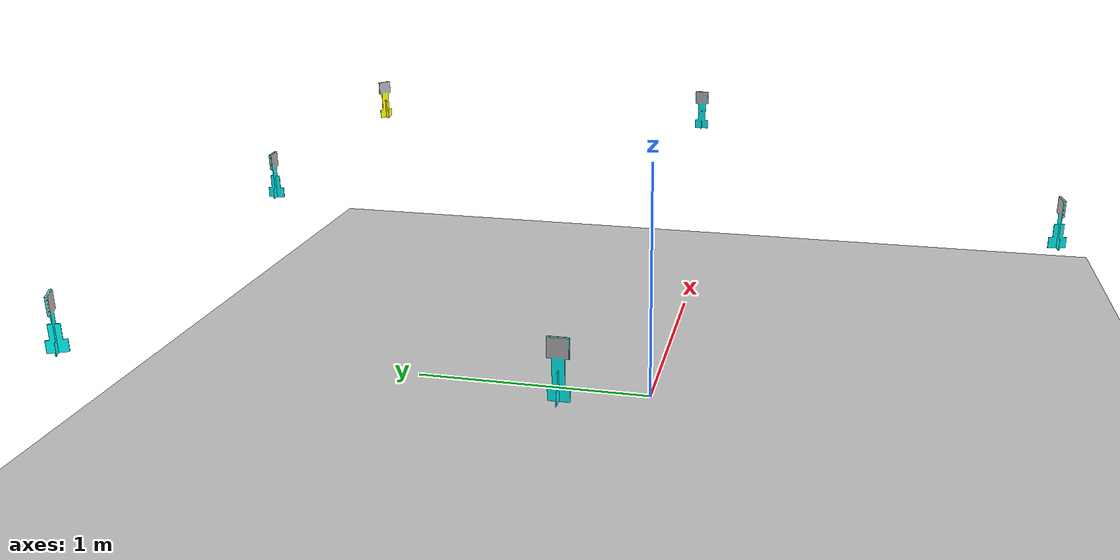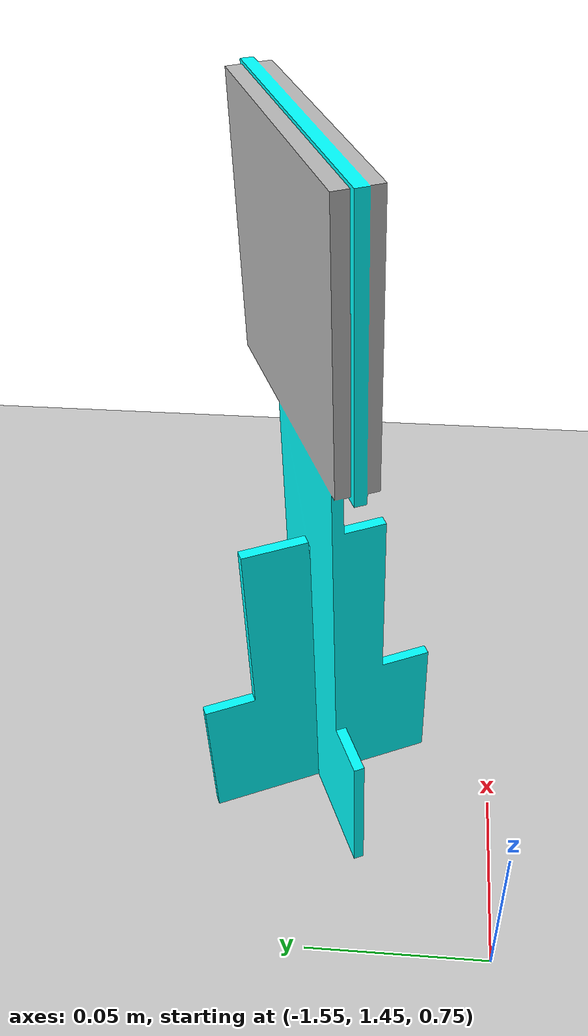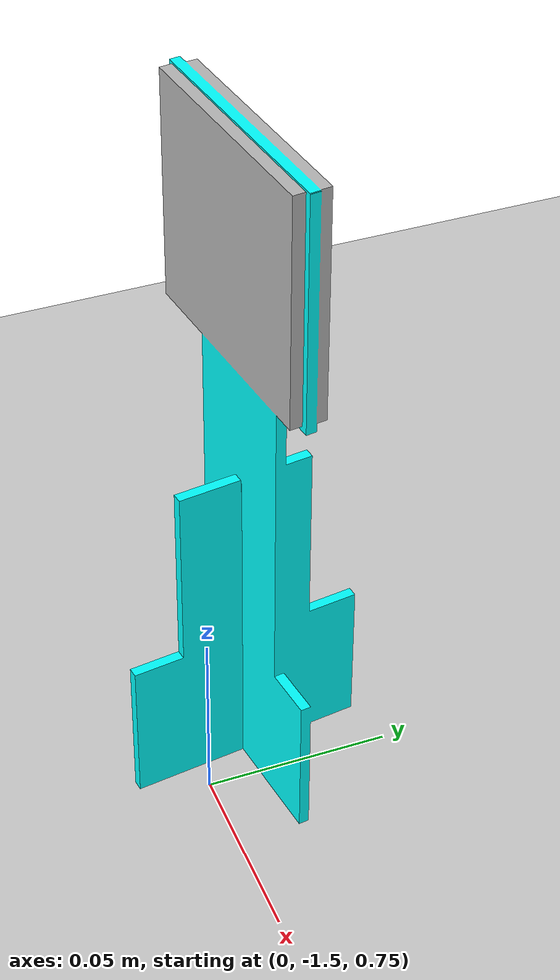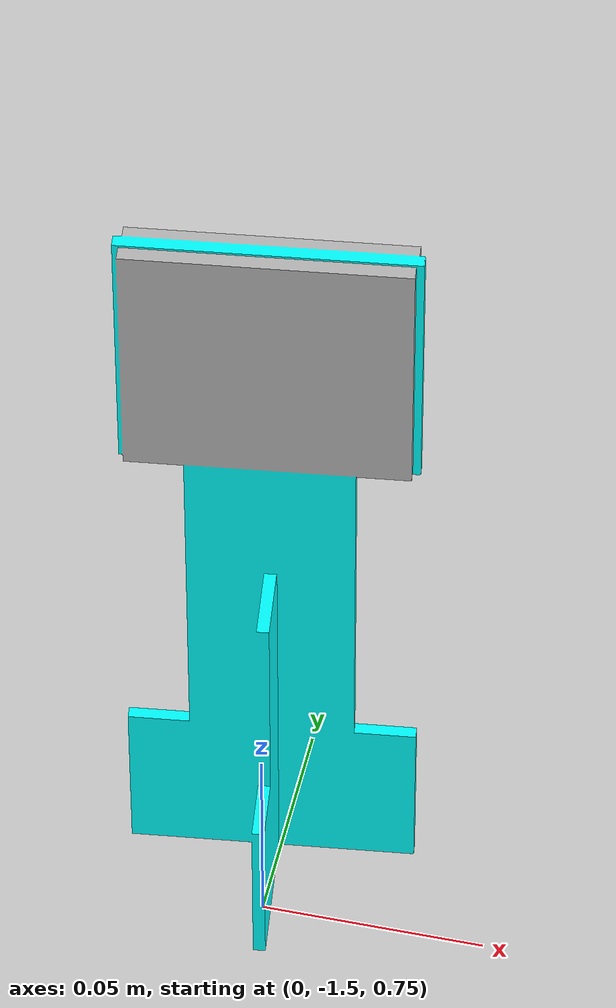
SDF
<sdf version="1.4">
  <world name="default">
    <scene>
      <ambient>0.8 0.8 0.8 1</ambient>
      <background>0.7 0.7 0.7 1</background>
      <shadows>true</shadows>
    </scene>

    <!-- A global light source -->
    <include>
      <uri>model://sun</uri>
      <pose> -2.0 2.0 2.0 0 0 0</pose>
    </include>

    <!-- A ground plane -->
    <include>
      <uri>model://ground_plane</uri>
    </include>

 <!-- creeper_10_azul -->
    <include>
      <uri>model://reuniao/creepers/creeper_10_azul</uri>
      <pose> -1.5 1.5 0.75 0 0 2.0</pose>
    </include>

 <!-- creeper_10_verde -->
    <include>
      <uri>model://reuniao/creepers/creeper_10_verde</uri>
      <pose> 0 1.58 0.75 0 0 1.65</pose>
    </include>

 <!-- creeper_10_amarelo -->
    <include>
      <uri>model://reuniao/creepers/creeper_10_amarelo</uri>
      <pose> -1.5 0 0.75 0 0 0</pose>
    </include>

 <!-- creeper_20_azul -->
    <include>
      <uri>model://reuniao/creepers/creeper_20_azul</uri>
      <pose> 1.5 -0 0.75 0 0 0</pose>
    </include>

 <!-- creeper_20_verde -->
    <include>
      <uri>model://reuniao/creepers/creeper_20_verde</uri>
      <pose>  0 -1.49 0.75 0 0 1.7</pose>
    </include>

 <!-- creeper_20_amarelo -->
    <include>
      <uri>model://reuniao/creepers/creeper_20_amarelo</uri>
      <pose> 1.4 1.67  0.75 0 0 0.9</pose>
    </include>

    <physics type="ode">
      <real_time_update_rate>1000.0</real_time_update_rate>
      <max_step_size>0.001</max_step_size>
      <real_time_factor>1</real_time_factor>
      <ode>
        <solver>
          <type>quick</type>
          <iters>150</iters>
          <precon_iters>0</precon_iters>
          <sor>1.400000</sor>
          <use_dynamic_moi_rescaling>1</use_dynamic_moi_rescaling>
        </solver>
        <constraints>
          <cfm>0.00001</cfm>
          <erp>0.2</erp>
          <contact_max_correcting_vel>2000.000000</contact_max_correcting_vel>
          <contact_surface_layer>0.01000</contact_surface_layer>
        </constraints>
      </ode>
    </physics>

    <gui fullscreen='0'>
      <camera name='user_camera'>
        <pose frame=''>0.238775 -6.8831 10.8485 -0 0.979642 1.5602</pose>
        <view_controller>orbit</view_controller>
        <projection_type>perspective</projection_type>
      </camera>
    </gui>

  </world>

</sdf>

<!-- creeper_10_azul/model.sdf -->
<sdf version='1.6'>
  <model name='creeper_10_azul'>
    <link name='link'>
      <pose frame=''>0 -0 0.115 0 -0 0</pose>
      <inertial>
        <mass>0.00004</mass>
        <inertia>
          <ixx>2.01e-06</ixx>
          <ixy>0</ixy>
          <ixz>0</ixz>
          <iyy>2.01e-06</iyy>
          <iyz>0</iyz>
          <izz>5.9e-07</izz>
        </inertia>
        <pose frame=''>0 0 0 0 -0 0</pose>
      </inertial>
      <self_collide>0</self_collide>
      <enable_wind>0</enable_wind>
      <kinematic>0</kinematic>
      <gravity>1</gravity>
      <visual name='visual'>
        <pose frame=''>0 0 -0.15 0 0 0</pose>
        <geometry>
          <mesh>
            <uri>model://reuniao/creepers/creeper_10_azul/materials/textures/creeper.dae</uri>
            <scale>1 1 1</scale>
          </mesh>
        </geometry>
        <transparency>0</transparency>
        <cast_shadows>1</cast_shadows>
      </visual>
      <collision name='collision'>
        <laser_retro>0</laser_retro>
        <max_contacts>10</max_contacts>
        <pose frame=''>0 0 0 0 -0 0</pose>
        <geometry>
          <box>
            <size>0.015 0.035 0.2</size>
          </box>
        </geometry>
        <surface>
          <friction>
            <ode>
              <mu>10</mu>
              <mu2>10</mu2>
              <fdir1>0 0 0</fdir1>
              <slip1>0</slip1>
              <slip2>0</slip2>
            </ode>
            <torsional>
              <coefficient>1</coefficient>
              <patch_radius>0</patch_radius>
              <surface_radius>0</surface_radius>
              <use_patch_radius>1</use_patch_radius>
              <ode>
                <slip>0</slip>
              </ode>
            </torsional>
          </friction>
          <bounce>
            <restitution_coefficient>0</restitution_coefficient>
            <threshold>1e+06</threshold>
          </bounce>
          <contact>
            <collide_without_contact>0</collide_without_contact>
            <collide_without_contact_bitmask>1</collide_without_contact_bitmask>
            <collide_bitmask>1</collide_bitmask>
            <ode>
              <soft_cfm>0</soft_cfm>
              <soft_erp>0.2</soft_erp>
              <kp>1e+13</kp>
              <kd>1</kd>
              <max_vel>0.01</max_vel>
              <min_depth>0</min_depth>
            </ode>
            <bullet>
              <split_impulse>1</split_impulse>
              <split_impulse_penetration_threshold>-0.01</split_impulse_penetration_threshold>
              <soft_cfm>0</soft_cfm>
              <soft_erp>0.2</soft_erp>
              <kp>1e+13</kp>
              <kd>1</kd>
            </bullet>
          </contact>
        </surface>
      </collision>
    </link>
    <static>0</static>
    <allow_auto_disable>1</allow_auto_disable>
  </model>
</sdf>

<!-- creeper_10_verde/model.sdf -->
<sdf version='1.6'>
  <model name='creeper_10_verde'>
    <link name='link'>
      <pose frame=''>0 -0 0.115 0 -0 0</pose>
      <inertial>
        <mass>0.00004</mass>
        <inertia>
          <ixx>2.01e-06</ixx>
          <ixy>0</ixy>
          <ixz>0</ixz>
          <iyy>2.01e-06</iyy>
          <iyz>0</iyz>
          <izz>5.9e-07</izz>
        </inertia>
        <pose frame=''>0 0 0 0 -0 0</pose>
      </inertial>
      <self_collide>0</self_collide>
      <enable_wind>0</enable_wind>
      <kinematic>0</kinematic>
      <gravity>1</gravity>
      <visual name='visual'>
        <pose frame=''>0 0 -0.15 0 -0 0</pose>
        <geometry>
          <mesh>
            <uri>model://reuniao/creepers/creeper_10_verde/materials/textures/creeper.dae</uri>
            <scale>1 1 1</scale>
          </mesh>
        </geometry>
        <transparency>0</transparency>
        <cast_shadows>1</cast_shadows>
      </visual>
      <collision name='collision'>
        <laser_retro>0</laser_retro>
        <max_contacts>10</max_contacts>
        <pose frame=''>0 0 0 0 -0 0</pose>
        <geometry>
          <box>
            <size>0.015 0.035 0.2</size>
          </box>
        </geometry>
        <surface>
          <friction>
            <ode>
              <mu>10</mu>
              <mu2>10</mu2>
              <fdir1>0 0 0</fdir1>
              <slip1>0</slip1>
              <slip2>0</slip2>
            </ode>
            <torsional>
              <coefficient>1</coefficient>
              <patch_radius>0</patch_radius>
              <surface_radius>0</surface_radius>
              <use_patch_radius>1</use_patch_radius>
              <ode>
                <slip>0</slip>
              </ode>
            </torsional>
          </friction>
          <bounce>
            <restitution_coefficient>0</restitution_coefficient>
            <threshold>1e+06</threshold>
          </bounce>
          <contact>
            <collide_without_contact>0</collide_without_contact>
            <collide_without_contact_bitmask>1</collide_without_contact_bitmask>
            <collide_bitmask>1</collide_bitmask>
            <ode>
              <soft_cfm>0</soft_cfm>
              <soft_erp>0.2</soft_erp>
              <kp>1e+13</kp>
              <kd>1</kd>
              <max_vel>0.01</max_vel>
              <min_depth>0</min_depth>
            </ode>
            <bullet>
              <split_impulse>1</split_impulse>
              <split_impulse_penetration_threshold>-0.01</split_impulse_penetration_threshold>
              <soft_cfm>0</soft_cfm>
              <soft_erp>0.2</soft_erp>
              <kp>1e+13</kp>
              <kd>1</kd>
            </bullet>
          </contact>
        </surface>
      </collision>
    </link>
    <static>0</static>
    <allow_auto_disable>1</allow_auto_disable>
  </model>
</sdf>

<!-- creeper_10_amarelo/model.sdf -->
<sdf version='1.6'>
  <model name='creeper_10_amarelo'>
    <link name='link'>
      <pose frame=''>0 -0 0.115 0 -0 0</pose>
      <inertial>
        <mass>0.00004</mass>
        <inertia>
          <ixx>2.01e-06</ixx>
          <ixy>0</ixy>
          <ixz>0</ixz>
          <iyy>2.01e-06</iyy>
          <iyz>0</iyz>
          <izz>5.9e-07</izz>
        </inertia>
        <pose frame=''>0 0 0 0 -0 0</pose>
      </inertial>
      <self_collide>0</self_collide>
      <enable_wind>0</enable_wind>
      <kinematic>0</kinematic>
      <gravity>1</gravity>
      <visual name='visual'>
        <pose frame=''>0 0 -0.15 0 -0 0</pose>
        <geometry>
          <mesh>
            <uri>model://reuniao/creepers/creeper_10_amarelo/materials/textures/creeper.dae</uri>
            <scale>1 1 1</scale>
          </mesh>
        </geometry>
        <transparency>0</transparency>
        <cast_shadows>1</cast_shadows>
      </visual>
      <collision name='collision'>
        <laser_retro>0</laser_retro>
        <max_contacts>10</max_contacts>
        <pose frame=''>0 0 0 0 -0 0</pose>
        <geometry>
          <box>
            <size>0.015 0.035 0.2</size>
          </box>
        </geometry>
        <surface>
          <friction>
            <ode>
              <mu>10</mu>
              <mu2>10</mu2>
              <fdir1>0 0 0</fdir1>
              <slip1>0</slip1>
              <slip2>0</slip2>
            </ode>
            <torsional>
              <coefficient>1</coefficient>
              <patch_radius>0</patch_radius>
              <surface_radius>0</surface_radius>
              <use_patch_radius>1</use_patch_radius>
              <ode>
                <slip>0</slip>
              </ode>
            </torsional>
          </friction>
          <bounce>
            <restitution_coefficient>0</restitution_coefficient>
            <threshold>1e+06</threshold>
          </bounce>
          <contact>
            <collide_without_contact>0</collide_without_contact>
            <collide_without_contact_bitmask>1</collide_without_contact_bitmask>
            <collide_bitmask>1</collide_bitmask>
            <ode>
              <soft_cfm>0</soft_cfm>
              <soft_erp>0.2</soft_erp>
              <kp>1e+13</kp>
              <kd>1</kd>
              <max_vel>0.01</max_vel>
              <min_depth>0</min_depth>
            </ode>
            <bullet>
              <split_impulse>1</split_impulse>
              <split_impulse_penetration_threshold>-0.01</split_impulse_penetration_threshold>
              <soft_cfm>0</soft_cfm>
              <soft_erp>0.2</soft_erp>
              <kp>1e+13</kp>
              <kd>1</kd>
            </bullet>
          </contact>
        </surface>
      </collision>
    </link>
    <static>0</static>
    <allow_auto_disable>1</allow_auto_disable>
  </model>
</sdf>

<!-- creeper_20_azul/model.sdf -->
<sdf version='1.6'>
  <model name='creeper_20_azul'>
    <link name='link'>
      <pose frame=''>0 -0 0.115 0 -0 0</pose>
      <inertial>
        <mass>0.00004</mass>
        <inertia>
          <ixx>2.01e-06</ixx>
          <ixy>0</ixy>
          <ixz>0</ixz>
          <iyy>2.01e-06</iyy>
          <iyz>0</iyz>
          <izz>5.9e-07</izz>
        </inertia>
        <pose frame=''>0 0 0 0 -0 0</pose>
      </inertial>
      <self_collide>0</self_collide>
      <enable_wind>0</enable_wind>
      <kinematic>0</kinematic>
      <gravity>1</gravity>
      <visual name='visual'>
        <pose frame=''>0 0 -0.15 0 0 0</pose>
        <geometry>
          <mesh>
            <uri>model://reuniao/creepers/creeper_20_azul/materials/textures/creeper.dae</uri>
            <scale>1 1 1</scale>
          </mesh>
        </geometry>
        <transparency>0</transparency>
        <cast_shadows>1</cast_shadows>
      </visual>
      <collision name='collision'>
        <laser_retro>0</laser_retro>
        <max_contacts>10</max_contacts>
        <pose frame=''>0 0 0 0 -0 0</pose>
        <geometry>
          <box>
            <size>0.015 0.035 0.2</size>
          </box>
        </geometry>
        <surface>
          <friction>
            <ode>
              <mu>10</mu>
              <mu2>10</mu2>
              <fdir1>0 0 0</fdir1>
              <slip1>0</slip1>
              <slip2>0</slip2>
            </ode>
            <torsional>
              <coefficient>1</coefficient>
              <patch_radius>0</patch_radius>
              <surface_radius>0</surface_radius>
              <use_patch_radius>1</use_patch_radius>
              <ode>
                <slip>0</slip>
              </ode>
            </torsional>
          </friction>
          <bounce>
            <restitution_coefficient>0</restitution_coefficient>
            <threshold>1e+06</threshold>
          </bounce>
          <contact>
            <collide_without_contact>0</collide_without_contact>
            <collide_without_contact_bitmask>1</collide_without_contact_bitmask>
            <collide_bitmask>1</collide_bitmask>
            <ode>
              <soft_cfm>0</soft_cfm>
              <soft_erp>0.2</soft_erp>
              <kp>1e+13</kp>
              <kd>1</kd>
              <max_vel>0.01</max_vel>
              <min_depth>0</min_depth>
            </ode>
            <bullet>
              <split_impulse>1</split_impulse>
              <split_impulse_penetration_threshold>-0.01</split_impulse_penetration_threshold>
              <soft_cfm>0</soft_cfm>
              <soft_erp>0.2</soft_erp>
              <kp>1e+13</kp>
              <kd>1</kd>
            </bullet>
          </contact>
        </surface>
      </collision>
    </link>
    <static>0</static>
    <allow_auto_disable>1</allow_auto_disable>
  </model>
</sdf>

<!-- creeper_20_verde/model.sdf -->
<sdf version='1.6'>
  <model name='creeper_20_verde'>
    <link name='link'>
      <pose frame=''>0 -0 0.115 0 -0 0</pose>
      <inertial>
        <mass>0.00004</mass>
        <inertia>
          <ixx>2.01e-06</ixx>
          <ixy>0</ixy>
          <ixz>0</ixz>
          <iyy>2.01e-06</iyy>
          <iyz>0</iyz>
          <izz>5.9e-07</izz>
        </inertia>
        <pose frame=''>0 0 0 0 -0 0</pose>
      </inertial>
      <self_collide>0</self_collide>
      <enable_wind>0</enable_wind>
      <kinematic>0</kinematic>
      <gravity>1</gravity>
      <visual name='visual'>
        <pose frame=''>0 0 -0.15 0 -0 0</pose>
        <geometry>
          <mesh>
            <uri>model://reuniao/creepers/creeper_20_verde/materials/textures/creeper.dae</uri>
            <scale>1 1 1</scale>
          </mesh>
        </geometry>
        <transparency>0</transparency>
        <cast_shadows>1</cast_shadows>
      </visual>
      <collision name='collision'>
        <laser_retro>0</laser_retro>
        <max_contacts>10</max_contacts>
        <pose frame=''>0 0 0 0 -0 0</pose>
        <geometry>
          <box>
            <size>0.015 0.035 0.2</size>
          </box>
        </geometry>
        <surface>
          <friction>
            <ode>
              <mu>10</mu>
              <mu2>10</mu2>
              <fdir1>0 0 0</fdir1>
              <slip1>0</slip1>
              <slip2>0</slip2>
            </ode>
            <torsional>
              <coefficient>1</coefficient>
              <patch_radius>0</patch_radius>
              <surface_radius>0</surface_radius>
              <use_patch_radius>1</use_patch_radius>
              <ode>
                <slip>0</slip>
              </ode>
            </torsional>
          </friction>
          <bounce>
            <restitution_coefficient>0</restitution_coefficient>
            <threshold>1e+06</threshold>
          </bounce>
          <contact>
            <collide_without_contact>0</collide_without_contact>
            <collide_without_contact_bitmask>1</collide_without_contact_bitmask>
            <collide_bitmask>1</collide_bitmask>
            <ode>
              <soft_cfm>0</soft_cfm>
              <soft_erp>0.2</soft_erp>
              <kp>1e+13</kp>
              <kd>1</kd>
              <max_vel>0.01</max_vel>
              <min_depth>0</min_depth>
            </ode>
            <bullet>
              <split_impulse>1</split_impulse>
              <split_impulse_penetration_threshold>-0.01</split_impulse_penetration_threshold>
              <soft_cfm>0</soft_cfm>
              <soft_erp>0.2</soft_erp>
              <kp>1e+13</kp>
              <kd>1</kd>
            </bullet>
          </contact>
        </surface>
      </collision>
    </link>
    <static>0</static>
    <allow_auto_disable>1</allow_auto_disable>
  </model>
</sdf>

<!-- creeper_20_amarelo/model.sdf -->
<sdf version='1.6'>
  <model name='creeper_20_amarelo'>
    <link name='link'>
      <pose frame=''>0 -0 0.115 0 -0 0</pose>
      <inertial>
        <mass>0.00004</mass>
        <inertia>
          <ixx>2.01e-06</ixx>
          <ixy>0</ixy>
          <ixz>0</ixz>
          <iyy>2.01e-06</iyy>
          <iyz>0</iyz>
          <izz>5.9e-07</izz>
        </inertia>
        <pose frame=''>0 0 0 0 -0 0</pose>
      </inertial>
      <self_collide>0</self_collide>
      <enable_wind>0</enable_wind>
      <kinematic>0</kinematic>
      <gravity>1</gravity>
      <visual name='visual'>
        <pose frame=''>0 0 -0.15 0 -0 0</pose>
        <geometry>
          <mesh>
            <uri>model://reuniao/creepers/creeper_20_amarelo/materials/textures/creeper.dae</uri>
            <scale>1 1 1</scale>
          </mesh>
        </geometry>
        <transparency>0</transparency>
        <cast_shadows>1</cast_shadows>
      </visual>
      <collision name='collision'>
        <laser_retro>0</laser_retro>
        <max_contacts>10</max_contacts>
        <pose frame=''>0 0 0 0 -0 0</pose>
        <geometry>
          <box>
            <size>0.015 0.035 0.2</size>
          </box>
        </geometry>
        <surface>
          <friction>
            <ode>
              <mu>10</mu>
              <mu2>10</mu2>
              <fdir1>0 0 0</fdir1>
              <slip1>0</slip1>
              <slip2>0</slip2>
            </ode>
            <torsional>
              <coefficient>1</coefficient>
              <patch_radius>0</patch_radius>
              <surface_radius>0</surface_radius>
              <use_patch_radius>1</use_patch_radius>
              <ode>
                <slip>0</slip>
              </ode>
            </torsional>
          </friction>
          <bounce>
            <restitution_coefficient>0</restitution_coefficient>
            <threshold>1e+06</threshold>
          </bounce>
          <contact>
            <collide_without_contact>0</collide_without_contact>
            <collide_without_contact_bitmask>1</collide_without_contact_bitmask>
            <collide_bitmask>1</collide_bitmask>
            <ode>
              <soft_cfm>0</soft_cfm>
              <soft_erp>0.2</soft_erp>
              <kp>1e+13</kp>
              <kd>1</kd>
              <max_vel>0.01</max_vel>
              <min_depth>0</min_depth>
            </ode>
            <bullet>
              <split_impulse>1</split_impulse>
              <split_impulse_penetration_threshold>-0.01</split_impulse_penetration_threshold>
              <soft_cfm>0</soft_cfm>
              <soft_erp>0.2</soft_erp>
              <kp>1e+13</kp>
              <kd>1</kd>
            </bullet>
          </contact>
        </surface>
      </collision>
    </link>
    <static>0</static>
    <allow_auto_disable>1</allow_auto_disable>
  </model>
</sdf>
